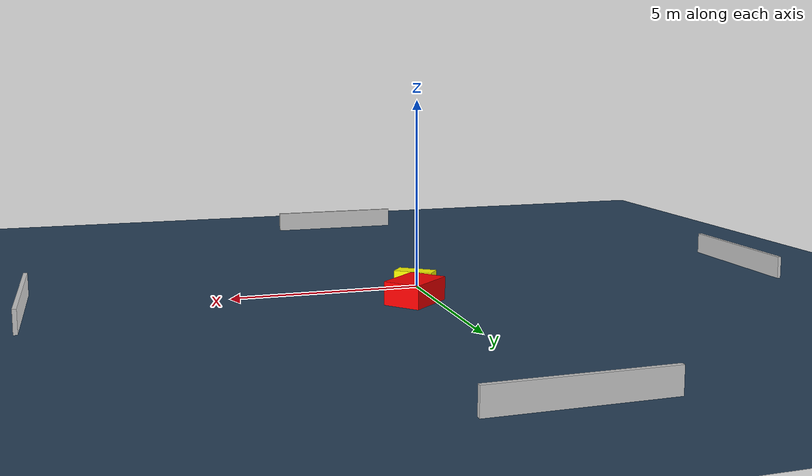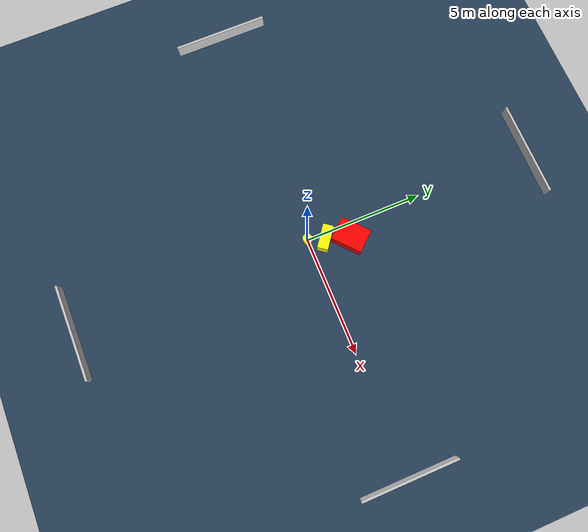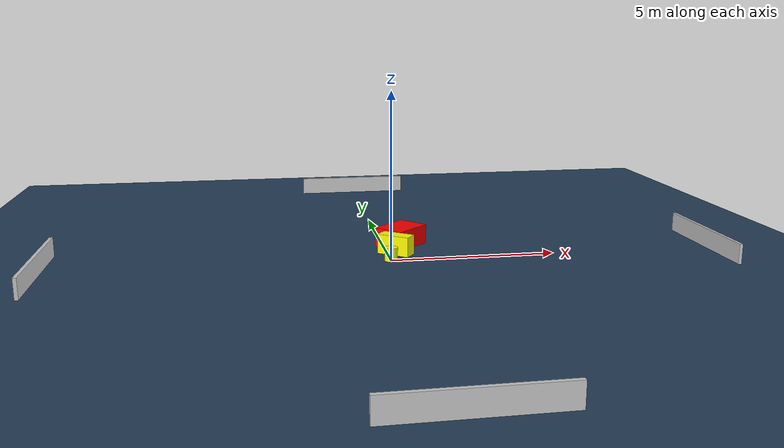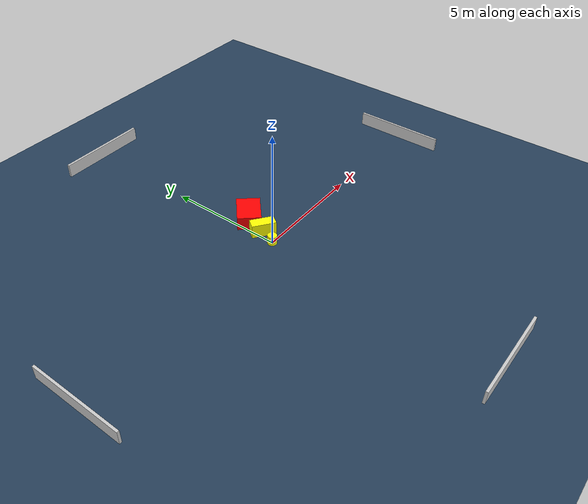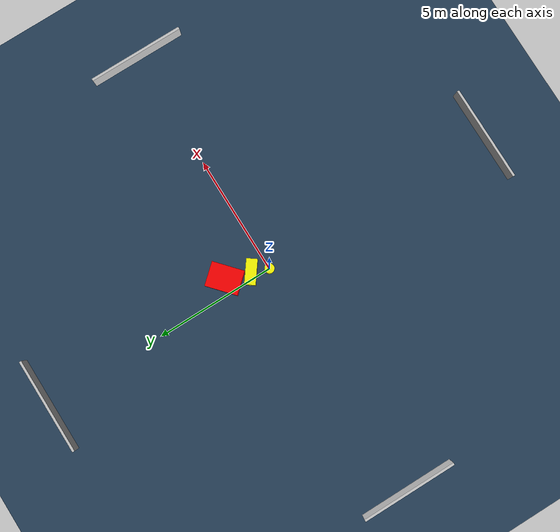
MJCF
<?xml version="1.0" ?>
<mujoco model="generated_environment">
  <option timestep="0.01" integrator="RK4" cone="elliptic"/>
  <default>
    <geom density="1"/>
  </default>
  <asset>
    <texture builtin="gradient" height="3072" name="skybox" rgb1="0.3 0.5 0.7" rgb2="0 0 0" type="skybox" width="512"/>
    <texture builtin="checker" height="300" name="groundplane" rgb1="0.2 0.3 0.4" rgb2="0.1 0.2 0.3" type="2d" width="300"/>
    <material name="groundplane" reflectance="0.2" texrepeat="5 5" texture="groundplane"/>
  </asset>
  <worldbody>
    <light dir="0 0 -1" directional="true" pos="0 0 1.5"/>
    <geom condim="3" friction="0.5 0.005 0.001" material="groundplane" name="floor" pos="0 0 0" size="0 0 0.05" type="plane"/>
    <body name="walls">
      <geom name="wall_1" condim="4" pos="-10.0 0.0 0.3" rgba="0.800000011920929 0.800000011920929 0.800000011920929 1.0" size="0.05 2.0 0.3" type="box"/>
      <geom name="wall_2" condim="4" pos="10.0 0.0 0.3" rgba="0.800000011920929 0.800000011920929 0.800000011920929 1.0" size="0.05 2.0 0.3" type="box"/>
      <geom name="wall_3" condim="4" pos="0.0 -10.0 0.3" rgba="0.800000011920929 0.800000011920929 0.800000011920929 1.0" size="2.0 0.05 0.3" type="box"/>
      <geom name="wall_4" condim="4" pos="0.0 10.0 0.3" rgba="0.800000011920929 0.800000011920929 0.800000011920929 1.0" size="2.0 0.05 0.3" type="box"/>
    </body>
    <body name="robot">
      <joint name="joint_x" type="slide" pos="0 0 0" axis="1 0 0"/>
      <joint name="joint_y" type="slide" pos="0 0 0" axis="0 1 0"/>
      <geom name="robot" type="cylinder" pos="0.0 0.0 0.2" size="0.2 0.2 0.0" mass="5.0" friction="1.0 0.005 0.0001" condim="4" rgba="1.0 1.0 0.0 1.0"/>
    </body>
    <body name="obstacle_1_movable">
      <geom name="obstacle_1_movable" condim="4" pos="0.25847482795330773 0.6862581529769466 0.3" euler="0 0 233.5936936263462" friction="0.0 0.005 0.001" rgba="1.0 1.0 0.0 1.0" size="0.22133261607645086 0.5102620913809353 0.3" type="box" mass="0.1"/>
      <joint type="free"/>
    </body>
    <body name="obstacle_2_static">
      <geom name="obstacle_2_static" condim="4" pos="0.5781986823138382 1.6848696341641933 0.3" euler="0 0 131.5057587750916" friction="0.0 0.005 0.001" rgba="1.0 0.0 0.0 1.0" size="0.49986401558518395 0.6596057115906927 0.3" type="box"/>
    </body>
  </worldbody>
  <actuator>
    <motor name="actuator_x" joint="joint_x" gear="1" ctrlrange="-1 1"/>
    <motor name="actuator_y" joint="joint_y" gear="1" ctrlrange="-1 1"/>
  </actuator>
</mujoco>
